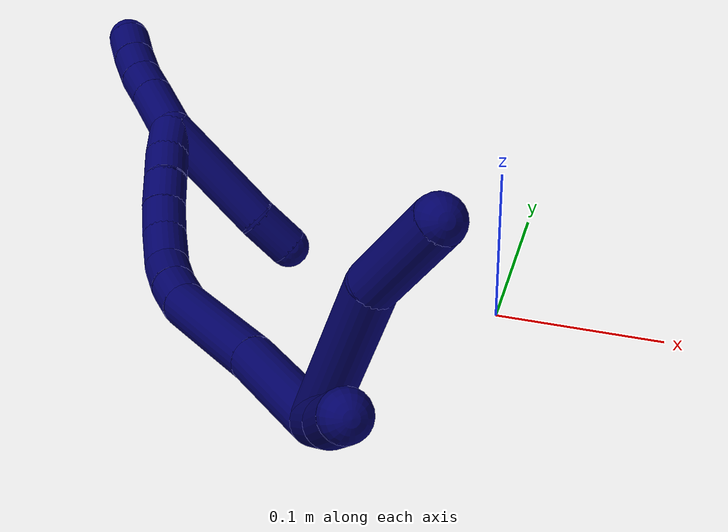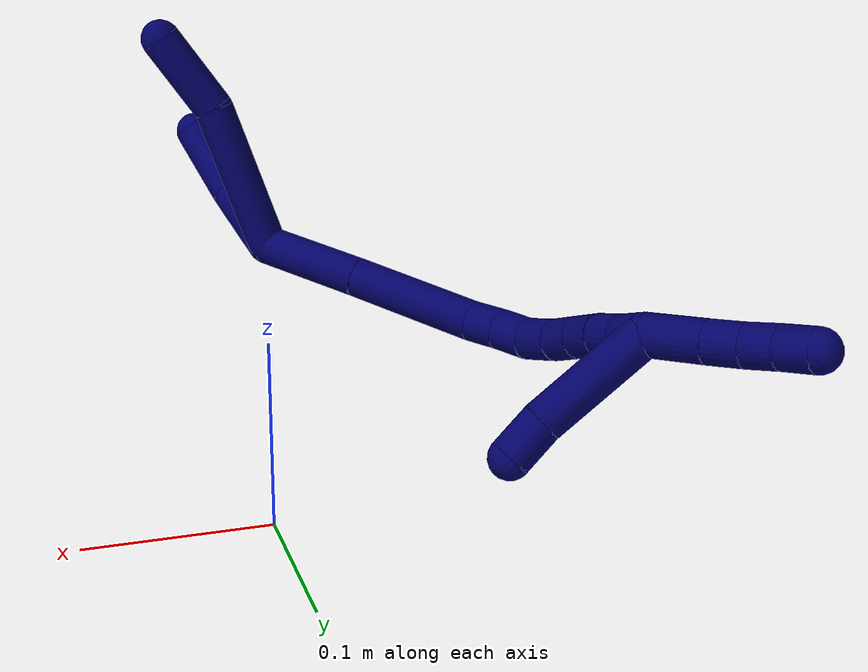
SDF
<sdf version="1.7">
 <world name="default">
  <model name="7">
   <static>0</static>
   <link name="7">
    <collision name="collision-cylinder-e_1_2_8">
     <pose>0.003746 0.033606 0.033964 -0.780106 0.078251 -0.032184</pose>
     <geometry><cylinder><radius>0.0125</radius><length>0.095853</length></cylinder></geometry>
     <surface>
      <friction><ode><mu>1.16</mu><mu2>1.16</mu2><slip1>0</slip1><slip2>0</slip2></ode></friction>
      <contact><ode><kp>1e+06</kp><kd>1</kd><max_vel>0</max_vel><min_depth>0.001</min_depth></ode></contact>
     </surface>
    </collision>
    <visual name="visual-cylinder-e_1_2_8">
     <pose>0.003746 0.033606 0.033964 -0.780106 0.078251 -0.032184</pose>
     <geometry><cylinder><radius>0.0125</radius><length>0.095853</length></cylinder></geometry>
     <material><ambient>0.003922 0 0.403922 1</ambient></material>
    </visual>
    <collision name="collision-cylinder-e_2_8_6">
     <pose>0.015708 0.081997 0.089068 -0.610295 0.308304 -0.09781</pose>
     <geometry><cylinder><radius>0.0125</radius><length>0.054147</length></cylinder></geometry>
     <surface>
      <friction><ode><mu>1.16</mu><mu2>1.16</mu2><slip1>0</slip1><slip2>0</slip2></ode></friction>
      <contact><ode><kp>1e+06</kp><kd>1</kd><max_vel>0</max_vel><min_depth>0.001</min_depth></ode></contact>
     </surface>
    </collision>
    <visual name="visual-cylinder-e_2_8_6">
     <pose>0.015708 0.081997 0.089068 -0.610295 0.308304 -0.09781</pose>
     <geometry><cylinder><radius>0.0125</radius><length>0.054147</length></cylinder></geometry>
     <material><ambient>0.003922 0 0.403922 1</ambient></material>
    </visual>
    <collision name="collision-cylinder-e_1_2_9">
     <pose>-0.001823 0.002598 0.023613 -0.109584 -0.076572 0.004202</pose>
     <geometry><cylinder><radius>0.0125</radius><length>0.047651</length></cylinder></geometry>
     <surface>
      <friction><ode><mu>1.16</mu><mu2>1.16</mu2><slip1>0</slip1><slip2>0</slip2></ode></friction>
      <contact><ode><kp>1e+06</kp><kd>1</kd><max_vel>0</max_vel><min_depth>0.001</min_depth></ode></contact>
     </surface>
    </collision>
    <visual name="visual-cylinder-e_1_2_9">
     <pose>-0.001823 0.002598 0.023613 -0.109584 -0.076572 0.004202</pose>
     <geometry><cylinder><radius>0.0125</radius><length>0.047651</length></cylinder></geometry>
     <material><ambient>0.003922 0 0.403922 1</ambient></material>
    </visual>
    <collision name="collision-cylinder-e_2_9_5">
     <pose>-0.006285 0.009814 0.072855 -0.178292 -0.101028 0.009038</pose>
     <geometry><cylinder><radius>0.0125</radius><length>0.052349</length></cylinder></geometry>
     <surface>
      <friction><ode><mu>1.16</mu><mu2>1.16</mu2><slip1>0</slip1><slip2>0</slip2></ode></friction>
      <contact><ode><kp>1e+06</kp><kd>1</kd><max_vel>0</max_vel><min_depth>0.001</min_depth></ode></contact>
     </surface>
    </collision>
    <visual name="visual-cylinder-e_2_9_5">
     <pose>-0.006285 0.009814 0.072855 -0.178292 -0.101028 0.009038</pose>
     <geometry><cylinder><radius>0.0125</radius><length>0.052349</length></cylinder></geometry>
     <material><ambient>0.003922 0 0.403922 1</ambient></material>
    </visual>
    <collision name="collision-cylinder-e_1_2_10">
     <pose>-0.00948 0.011113 -0.032375 -2.81093 -0.270196 1.36719</pose>
     <geometry><cylinder><radius>0.0125</radius><length>0.071035</length></cylinder></geometry>
     <surface>
      <friction><ode><mu>1.16</mu><mu2>1.16</mu2><slip1>0</slip1><slip2>0</slip2></ode></friction>
      <contact><ode><kp>1e+06</kp><kd>1</kd><max_vel>0</max_vel><min_depth>0.001</min_depth></ode></contact>
     </surface>
    </collision>
    <visual name="visual-cylinder-e_1_2_10">
     <pose>-0.00948 0.011113 -0.032375 -2.81093 -0.270196 1.36719</pose>
     <geometry><cylinder><radius>0.0125</radius><length>0.071035</length></cylinder></geometry>
     <material><ambient>0.003922 0 0.403922 1</ambient></material>
    </visual>
    <collision name="collision-cylinder-e_2_10_11">
     <pose>-0.031499 0.03309 -0.102548 -2.86173 -0.308622 1.6699</pose>
     <geometry><cylinder><radius>0.0125</radius><length>0.08256</length></cylinder></geometry>
     <surface>
      <friction><ode><mu>1.16</mu><mu2>1.16</mu2><slip1>0</slip1><slip2>0</slip2></ode></friction>
      <contact><ode><kp>1e+06</kp><kd>1</kd><max_vel>0</max_vel><min_depth>0.001</min_depth></ode></contact>
     </surface>
    </collision>
    <visual name="visual-cylinder-e_2_10_11">
     <pose>-0.031499 0.03309 -0.102548 -2.86173 -0.308622 1.6699</pose>
     <geometry><cylinder><radius>0.0125</radius><length>0.08256</length></cylinder></geometry>
     <material><ambient>0.003922 0 0.403922 1</ambient></material>
    </visual>
    <collision name="collision-cylinder-e_3_11_12">
     <pose>-0.046143 0.048452 -0.149467 -2.68335 -0.204183 0.827802</pose>
     <geometry><cylinder><radius>0.0125</radius><length>0.020767</length></cylinder></geometry>
     <surface>
      <friction><ode><mu>1.16</mu><mu2>1.16</mu2><slip1>0</slip1><slip2>0</slip2></ode></friction>
      <contact><ode><kp>1e+06</kp><kd>1</kd><max_vel>0</max_vel><min_depth>0.001</min_depth></ode></contact>
     </surface>
    </collision>
    <visual name="visual-cylinder-e_3_11_12">
     <pose>-0.046143 0.048452 -0.149467 -2.68335 -0.204183 0.827802</pose>
     <geometry><cylinder><radius>0.0125</radius><length>0.020767</length></cylinder></geometry>
     <material><ambient>0.003922 0 0.403922 1</ambient></material>
    </visual>
    <collision name="collision-cylinder-e_4_12_13">
     <pose>-0.049112 0.057964 -0.168072 -2.65536 -0.080297 0.32113</pose>
     <geometry><cylinder><radius>0.0125</radius><length>0.02153</length></cylinder></geometry>
     <surface>
      <friction><ode><mu>1.16</mu><mu2>1.16</mu2><slip1>0</slip1><slip2>0</slip2></ode></friction>
      <contact><ode><kp>1e+06</kp><kd>1</kd><max_vel>0</max_vel><min_depth>0.001</min_depth></ode></contact>
     </surface>
    </collision>
    <visual name="visual-cylinder-e_4_12_13">
     <pose>-0.049112 0.057964 -0.168072 -2.65536 -0.080297 0.32113</pose>
     <geometry><cylinder><radius>0.0125</radius><length>0.02153</length></cylinder></geometry>
     <material><ambient>0.003922 0 0.403922 1</ambient></material>
    </visual>
    <collision name="collision-cylinder-e_5_13_14">
     <pose>-0.050048 0.071347 -0.185946 -2.3573 -0.006111 0.014777</pose>
     <geometry><cylinder><radius>0.0125</radius><length>0.023698</length></cylinder></geometry>
     <surface>
      <friction><ode><mu>1.16</mu><mu2>1.16</mu2><slip1>0</slip1><slip2>0</slip2></ode></friction>
      <contact><ode><kp>1e+06</kp><kd>1</kd><max_vel>0</max_vel><min_depth>0.001</min_depth></ode></contact>
     </surface>
    </collision>
    <visual name="visual-cylinder-e_5_13_14">
     <pose>-0.050048 0.071347 -0.185946 -2.3573 -0.006111 0.014777</pose>
     <geometry><cylinder><radius>0.0125</radius><length>0.023698</length></cylinder></geometry>
     <material><ambient>0.003922 0 0.403922 1</ambient></material>
    </visual>
    <collision name="collision-cylinder-e_6_14_15">
     <pose>-0.049942 0.087628 -0.200501 -2.23291 0.017808 -0.036457</pose>
     <geometry><cylinder><radius>0.0125</radius><length>0.020065</length></cylinder></geometry>
     <surface>
      <friction><ode><mu>1.16</mu><mu2>1.16</mu2><slip1>0</slip1><slip2>0</slip2></ode></friction>
      <contact><ode><kp>1e+06</kp><kd>1</kd><max_vel>0</max_vel><min_depth>0.001</min_depth></ode></contact>
     </surface>
    </collision>
    <visual name="visual-cylinder-e_6_14_15">
     <pose>-0.049942 0.087628 -0.200501 -2.23291 0.017808 -0.036457</pose>
     <geometry><cylinder><radius>0.0125</radius><length>0.020065</length></cylinder></geometry>
     <material><ambient>0.003922 0 0.403922 1</ambient></material>
    </visual>
    <collision name="collision-cylinder-e_7_15_16">
     <pose>-0.048878 0.103551 -0.21275 -2.22009 0.087778 -0.17649</pose>
     <geometry><cylinder><radius>0.0125</radius><length>0.020196</length></cylinder></geometry>
     <surface>
      <friction><ode><mu>1.16</mu><mu2>1.16</mu2><slip1>0</slip1><slip2>0</slip2></ode></friction>
      <contact><ode><kp>1e+06</kp><kd>1</kd><max_vel>0</max_vel><min_depth>0.001</min_depth></ode></contact>
     </surface>
    </collision>
    <visual name="visual-cylinder-e_7_15_16">
     <pose>-0.048878 0.103551 -0.21275 -2.22009 0.087778 -0.17649</pose>
     <geometry><cylinder><radius>0.0125</radius><length>0.020196</length></cylinder></geometry>
     <material><ambient>0.003922 0 0.403922 1</ambient></material>
    </visual>
    <collision name="collision-cylinder-e_8_16_17">
     <pose>-0.047108 0.118894 -0.225584 -2.31515 0.088495 -0.201278</pose>
     <geometry><cylinder><radius>0.0125</radius><length>0.020012</length></cylinder></geometry>
     <surface>
      <friction><ode><mu>1.16</mu><mu2>1.16</mu2><slip1>0</slip1><slip2>0</slip2></ode></friction>
      <contact><ode><kp>1e+06</kp><kd>1</kd><max_vel>0</max_vel><min_depth>0.001</min_depth></ode></contact>
     </surface>
    </collision>
    <visual name="visual-cylinder-e_8_16_17">
     <pose>-0.047108 0.118894 -0.225584 -2.31515 0.088495 -0.201278</pose>
     <geometry><cylinder><radius>0.0125</radius><length>0.020012</length></cylinder></geometry>
     <material><ambient>0.003922 0 0.403922 1</ambient></material>
    </visual>
    <collision name="collision-cylinder-e_9_17_1">
     <pose>-0.04449 0.134158 -0.23829 -2.21459 0.173056 -0.343684</pose>
     <geometry><cylinder><radius>0.0125</radius><length>0.020138</length></cylinder></geometry>
     <surface>
      <friction><ode><mu>1.16</mu><mu2>1.16</mu2><slip1>0</slip1><slip2>0</slip2></ode></friction>
      <contact><ode><kp>1e+06</kp><kd>1</kd><max_vel>0</max_vel><min_depth>0.001</min_depth></ode></contact>
     </surface>
    </collision>
    <visual name="visual-cylinder-e_9_17_1">
     <pose>-0.04449 0.134158 -0.23829 -2.21459 0.173056 -0.343684</pose>
     <geometry><cylinder><radius>0.0125</radius><length>0.020138</length></cylinder></geometry>
     <material><ambient>0.003922 0 0.403922 1</ambient></material>
    </visual>
    <collision name="collision-cylinder-e_1_1_18">
     <pose>-0.046976 0.152392 -0.258999 -2.53211 -0.230285 0.704701</pose>
     <geometry><cylinder><radius>0.0125</radius><length>0.036967</length></cylinder></geometry>
     <surface>
      <friction><ode><mu>1.16</mu><mu2>1.16</mu2><slip1>0</slip1><slip2>0</slip2></ode></friction>
      <contact><ode><kp>1e+06</kp><kd>1</kd><max_vel>0</max_vel><min_depth>0.001</min_depth></ode></contact>
     </surface>
    </collision>
    <visual name="visual-cylinder-e_1_1_18">
     <pose>-0.046976 0.152392 -0.258999 -2.53211 -0.230285 0.704701</pose>
     <geometry><cylinder><radius>0.0125</radius><length>0.036967</length></cylinder></geometry>
     <material><ambient>0.003922 0 0.403922 1</ambient></material>
    </visual>
    <collision name="collision-cylinder-e_2_18_19">
     <pose>-0.053915 0.168723 -0.282275 -2.52579 -0.254938 0.7662</pose>
     <geometry><cylinder><radius>0.0125</radius><length>0.021574</length></cylinder></geometry>
     <surface>
      <friction><ode><mu>1.16</mu><mu2>1.16</mu2><slip1>0</slip1><slip2>0</slip2></ode></friction>
      <contact><ode><kp>1e+06</kp><kd>1</kd><max_vel>0</max_vel><min_depth>0.001</min_depth></ode></contact>
     </surface>
    </collision>
    <visual name="visual-cylinder-e_2_18_19">
     <pose>-0.053915 0.168723 -0.282275 -2.52579 -0.254938 0.7662</pose>
     <geometry><cylinder><radius>0.0125</radius><length>0.021574</length></cylinder></geometry>
     <material><ambient>0.003922 0 0.403922 1</ambient></material>
    </visual>
    <collision name="collision-cylinder-e_3_19_20">
     <pose>-0.058412 0.181198 -0.298486 -2.44399 -0.175312 0.47421</pose>
     <geometry><cylinder><radius>0.0125</radius><length>0.02038</length></cylinder></geometry>
     <surface>
      <friction><ode><mu>1.16</mu><mu2>1.16</mu2><slip1>0</slip1><slip2>0</slip2></ode></friction>
      <contact><ode><kp>1e+06</kp><kd>1</kd><max_vel>0</max_vel><min_depth>0.001</min_depth></ode></contact>
     </surface>
    </collision>
    <visual name="visual-cylinder-e_3_19_20">
     <pose>-0.058412 0.181198 -0.298486 -2.44399 -0.175312 0.47421</pose>
     <geometry><cylinder><radius>0.0125</radius><length>0.02038</length></cylinder></geometry>
     <material><ambient>0.003922 0 0.403922 1</ambient></material>
    </visual>
    <collision name="collision-cylinder-e_4_20_4">
     <pose>-0.061246 0.194388 -0.314206 -2.44302 -0.100381 0.274111</pose>
     <geometry><cylinder><radius>0.0125</radius><length>0.021079</length></cylinder></geometry>
     <surface>
      <friction><ode><mu>1.16</mu><mu2>1.16</mu2><slip1>0</slip1><slip2>0</slip2></ode></friction>
      <contact><ode><kp>1e+06</kp><kd>1</kd><max_vel>0</max_vel><min_depth>0.001</min_depth></ode></contact>
     </surface>
    </collision>
    <visual name="visual-cylinder-e_4_20_4">
     <pose>-0.061246 0.194388 -0.314206 -2.44302 -0.100381 0.274111</pose>
     <geometry><cylinder><radius>0.0125</radius><length>0.021079</length></cylinder></geometry>
     <material><ambient>0.003922 0 0.403922 1</ambient></material>
    </visual>
    <collision name="collision-cylinder-e_1_1_21">
     <pose>-0.016171 0.116925 -0.241229 1.45159 0.809268 0.726354</pose>
     <geometry><cylinder><radius>0.0125</radius><length>0.073463</length></cylinder></geometry>
     <surface>
      <friction><ode><mu>1.16</mu><mu2>1.16</mu2><slip1>0</slip1><slip2>0</slip2></ode></friction>
      <contact><ode><kp>1e+06</kp><kd>1</kd><max_vel>0</max_vel><min_depth>0.001</min_depth></ode></contact>
     </surface>
    </collision>
    <visual name="visual-cylinder-e_1_1_21">
     <pose>-0.016171 0.116925 -0.241229 1.45159 0.809268 0.726354</pose>
     <geometry><cylinder><radius>0.0125</radius><length>0.073463</length></cylinder></geometry>
     <material><ambient>0.003922 0 0.403922 1</ambient></material>
    </visual>
    <collision name="collision-cylinder-e_2_21_3">
     <pose>0.020721 0.083468 -0.23926 1.69617 0.889487 0.990924</pose>
     <geometry><cylinder><radius>0.0125</radius><length>0.026537</length></cylinder></geometry>
     <surface>
      <friction><ode><mu>1.16</mu><mu2>1.16</mu2><slip1>0</slip1><slip2>0</slip2></ode></friction>
      <contact><ode><kp>1e+06</kp><kd>1</kd><max_vel>0</max_vel><min_depth>0.001</min_depth></ode></contact>
     </surface>
    </collision>
    <visual name="visual-cylinder-e_2_21_3">
     <pose>0.020721 0.083468 -0.23926 1.69617 0.889487 0.990924</pose>
     <geometry><cylinder><radius>0.0125</radius><length>0.026537</length></cylinder></geometry>
     <material><ambient>0.003922 0 0.403922 1</ambient></material>
    </visual>
    <collision name="collision-sphere-3">
     <pose>0.031027 0.075177 -0.240305 0 -0 0</pose>
     <geometry><sphere><radius>0.0125</radius></sphere></geometry>
     <surface>
      <friction><ode><mu>1.16</mu><mu2>1.16</mu2><slip1>0</slip1><slip2>0</slip2></ode></friction>
      <contact><ode><kp>1e+06</kp><kd>1</kd><max_vel>0</max_vel><min_depth>0.001</min_depth></ode></contact>
     </surface>
    </collision>
    <visual name="visual-sphere-3">
     <pose>0.031027 0.075177 -0.240305 0 -0 0</pose>
     <geometry><sphere><radius>0.0125</radius></sphere></geometry>
     <material><ambient>0.003922 0 0.403922 1</ambient></material>
    </visual>
    <collision name="collision-sphere-21">
     <pose>0.010415 0.091759 -0.238215 0 -0 0</pose>
     <geometry><sphere><radius>0.0125</radius></sphere></geometry>
     <surface>
      <friction><ode><mu>1.16</mu><mu2>1.16</mu2><slip1>0</slip1><slip2>0</slip2></ode></friction>
      <contact><ode><kp>1e+06</kp><kd>1</kd><max_vel>0</max_vel><min_depth>0.001</min_depth></ode></contact>
     </surface>
    </collision>
    <visual name="visual-sphere-21">
     <pose>0.010415 0.091759 -0.238215 0 -0 0</pose>
     <geometry><sphere><radius>0.0125</radius></sphere></geometry>
     <material><ambient>0.003922 0 0.403922 1</ambient></material>
    </visual>
    <collision name="collision-sphere-4">
     <pose>-0.062302 0.201132 -0.322236 0 -0 0</pose>
     <geometry><sphere><radius>0.0125</radius></sphere></geometry>
     <surface>
      <friction><ode><mu>1.16</mu><mu2>1.16</mu2><slip1>0</slip1><slip2>0</slip2></ode></friction>
      <contact><ode><kp>1e+06</kp><kd>1</kd><max_vel>0</max_vel><min_depth>0.001</min_depth></ode></contact>
     </surface>
    </collision>
    <visual name="visual-sphere-4">
     <pose>-0.062302 0.201132 -0.322236 0 -0 0</pose>
     <geometry><sphere><radius>0.0125</radius></sphere></geometry>
     <material><ambient>0.003922 0 0.403922 1</ambient></material>
    </visual>
    <collision name="collision-sphere-20">
     <pose>-0.06019 0.187644 -0.306176 0 -0 0</pose>
     <geometry><sphere><radius>0.0125</radius></sphere></geometry>
     <surface>
      <friction><ode><mu>1.16</mu><mu2>1.16</mu2><slip1>0</slip1><slip2>0</slip2></ode></friction>
      <contact><ode><kp>1e+06</kp><kd>1</kd><max_vel>0</max_vel><min_depth>0.001</min_depth></ode></contact>
     </surface>
    </collision>
    <visual name="visual-sphere-20">
     <pose>-0.06019 0.187644 -0.306176 0 -0 0</pose>
     <geometry><sphere><radius>0.0125</radius></sphere></geometry>
     <material><ambient>0.003922 0 0.403922 1</ambient></material>
    </visual>
    <collision name="collision-sphere-10">
     <pose>-0.018961 0.022226 -0.064749 0 -0 0</pose>
     <geometry><sphere><radius>0.0125</radius></sphere></geometry>
     <surface>
      <friction><ode><mu>1.16</mu><mu2>1.16</mu2><slip1>0</slip1><slip2>0</slip2></ode></friction>
      <contact><ode><kp>1e+06</kp><kd>1</kd><max_vel>0</max_vel><min_depth>0.001</min_depth></ode></contact>
     </surface>
    </collision>
    <visual name="visual-sphere-10">
     <pose>-0.018961 0.022226 -0.064749 0 -0 0</pose>
     <geometry><sphere><radius>0.0125</radius></sphere></geometry>
     <material><ambient>0.003922 0 0.403922 1</ambient></material>
    </visual>
    <collision name="collision-sphere-5">
     <pose>-0.008925 0.014433 0.098483 0 -0 0</pose>
     <geometry><sphere><radius>0.0125</radius></sphere></geometry>
     <surface>
      <friction><ode><mu>1.16</mu><mu2>1.16</mu2><slip1>0</slip1><slip2>0</slip2></ode></friction>
      <contact><ode><kp>1e+06</kp><kd>1</kd><max_vel>0</max_vel><min_depth>0.001</min_depth></ode></contact>
     </surface>
    </collision>
    <visual name="visual-sphere-5">
     <pose>-0.008925 0.014433 0.098483 0 -0 0</pose>
     <geometry><sphere><radius>0.0125</radius></sphere></geometry>
     <material><ambient>0.003922 0 0.403922 1</ambient></material>
    </visual>
    <collision name="collision-sphere-6">
     <pose>0.023923 0.096781 0.110208 0 -0 0</pose>
     <geometry><sphere><radius>0.0125</radius></sphere></geometry>
     <surface>
      <friction><ode><mu>1.16</mu><mu2>1.16</mu2><slip1>0</slip1><slip2>0</slip2></ode></friction>
      <contact><ode><kp>1e+06</kp><kd>1</kd><max_vel>0</max_vel><min_depth>0.001</min_depth></ode></contact>
     </surface>
    </collision>
    <visual name="visual-sphere-6">
     <pose>0.023923 0.096781 0.110208 0 -0 0</pose>
     <geometry><sphere><radius>0.0125</radius></sphere></geometry>
     <material><ambient>0.003922 0 0.403922 1</ambient></material>
    </visual>
    <collision name="collision-sphere-9">
     <pose>-0.003645 0.005196 0.047227 0 -0 0</pose>
     <geometry><sphere><radius>0.0125</radius></sphere></geometry>
     <surface>
      <friction><ode><mu>1.16</mu><mu2>1.16</mu2><slip1>0</slip1><slip2>0</slip2></ode></friction>
      <contact><ode><kp>1e+06</kp><kd>1</kd><max_vel>0</max_vel><min_depth>0.001</min_depth></ode></contact>
     </surface>
    </collision>
    <visual name="visual-sphere-9">
     <pose>-0.003645 0.005196 0.047227 0 -0 0</pose>
     <geometry><sphere><radius>0.0125</radius></sphere></geometry>
     <material><ambient>0.003922 0 0.403922 1</ambient></material>
    </visual>
    <collision name="collision-sphere-2">
     <geometry><sphere><radius>0.0125</radius></sphere></geometry>
     <surface>
      <friction><ode><mu>1.16</mu><mu2>1.16</mu2><slip1>0</slip1><slip2>0</slip2></ode></friction>
      <contact><ode><kp>1e+06</kp><kd>1</kd><max_vel>0</max_vel><min_depth>0.001</min_depth></ode></contact>
     </surface>
    </collision>
    <visual name="visual-sphere-2">
     <geometry><sphere><radius>0.0125</radius></sphere></geometry>
     <material><ambient>0.003922 0 0.403922 1</ambient></material>
    </visual>
    <collision name="collision-sphere-19">
     <pose>-0.056635 0.174752 -0.290796 0 -0 0</pose>
     <geometry><sphere><radius>0.0125</radius></sphere></geometry>
     <surface>
      <friction><ode><mu>1.16</mu><mu2>1.16</mu2><slip1>0</slip1><slip2>0</slip2></ode></friction>
      <contact><ode><kp>1e+06</kp><kd>1</kd><max_vel>0</max_vel><min_depth>0.001</min_depth></ode></contact>
     </surface>
    </collision>
    <visual name="visual-sphere-19">
     <pose>-0.056635 0.174752 -0.290796 0 -0 0</pose>
     <geometry><sphere><radius>0.0125</radius></sphere></geometry>
     <material><ambient>0.003922 0 0.403922 1</ambient></material>
    </visual>
    <collision name="collision-sphere-8">
     <pose>0.007493 0.067213 0.067928 0 -0 0</pose>
     <geometry><sphere><radius>0.0125</radius></sphere></geometry>
     <surface>
      <friction><ode><mu>1.16</mu><mu2>1.16</mu2><slip1>0</slip1><slip2>0</slip2></ode></friction>
      <contact><ode><kp>1e+06</kp><kd>1</kd><max_vel>0</max_vel><min_depth>0.001</min_depth></ode></contact>
     </surface>
    </collision>
    <visual name="visual-sphere-8">
     <pose>0.007493 0.067213 0.067928 0 -0 0</pose>
     <geometry><sphere><radius>0.0125</radius></sphere></geometry>
     <material><ambient>0.003922 0 0.403922 1</ambient></material>
    </visual>
    <collision name="collision-sphere-11">
     <pose>-0.044038 0.043954 -0.140348 0 -0 0</pose>
     <geometry><sphere><radius>0.0125</radius></sphere></geometry>
     <surface>
      <friction><ode><mu>1.16</mu><mu2>1.16</mu2><slip1>0</slip1><slip2>0</slip2></ode></friction>
      <contact><ode><kp>1e+06</kp><kd>1</kd><max_vel>0</max_vel><min_depth>0.001</min_depth></ode></contact>
     </surface>
    </collision>
    <visual name="visual-sphere-11">
     <pose>-0.044038 0.043954 -0.140348 0 -0 0</pose>
     <geometry><sphere><radius>0.0125</radius></sphere></geometry>
     <material><ambient>0.003922 0 0.403922 1</ambient></material>
    </visual>
    <collision name="collision-sphere-12">
     <pose>-0.048249 0.05295 -0.158586 0 -0 0</pose>
     <geometry><sphere><radius>0.0125</radius></sphere></geometry>
     <surface>
      <friction><ode><mu>1.16</mu><mu2>1.16</mu2><slip1>0</slip1><slip2>0</slip2></ode></friction>
      <contact><ode><kp>1e+06</kp><kd>1</kd><max_vel>0</max_vel><min_depth>0.001</min_depth></ode></contact>
     </surface>
    </collision>
    <visual name="visual-sphere-12">
     <pose>-0.048249 0.05295 -0.158586 0 -0 0</pose>
     <geometry><sphere><radius>0.0125</radius></sphere></geometry>
     <material><ambient>0.003922 0 0.403922 1</ambient></material>
    </visual>
    <collision name="collision-sphere-13">
     <pose>-0.049976 0.062978 -0.177559 0 -0 0</pose>
     <geometry><sphere><radius>0.0125</radius></sphere></geometry>
     <surface>
      <friction><ode><mu>1.16</mu><mu2>1.16</mu2><slip1>0</slip1><slip2>0</slip2></ode></friction>
      <contact><ode><kp>1e+06</kp><kd>1</kd><max_vel>0</max_vel><min_depth>0.001</min_depth></ode></contact>
     </surface>
    </collision>
    <visual name="visual-sphere-13">
     <pose>-0.049976 0.062978 -0.177559 0 -0 0</pose>
     <geometry><sphere><radius>0.0125</radius></sphere></geometry>
     <material><ambient>0.003922 0 0.403922 1</ambient></material>
    </visual>
    <collision name="collision-sphere-14">
     <pose>-0.050121 0.079716 -0.194334 0 -0 0</pose>
     <geometry><sphere><radius>0.0125</radius></sphere></geometry>
     <surface>
      <friction><ode><mu>1.16</mu><mu2>1.16</mu2><slip1>0</slip1><slip2>0</slip2></ode></friction>
      <contact><ode><kp>1e+06</kp><kd>1</kd><max_vel>0</max_vel><min_depth>0.001</min_depth></ode></contact>
     </surface>
    </collision>
    <visual name="visual-sphere-14">
     <pose>-0.050121 0.079716 -0.194334 0 -0 0</pose>
     <geometry><sphere><radius>0.0125</radius></sphere></geometry>
     <material><ambient>0.003922 0 0.403922 1</ambient></material>
    </visual>
    <collision name="collision-sphere-15">
     <pose>-0.049763 0.095539 -0.206668 0 -0 0</pose>
     <geometry><sphere><radius>0.0125</radius></sphere></geometry>
     <surface>
      <friction><ode><mu>1.16</mu><mu2>1.16</mu2><slip1>0</slip1><slip2>0</slip2></ode></friction>
      <contact><ode><kp>1e+06</kp><kd>1</kd><max_vel>0</max_vel><min_depth>0.001</min_depth></ode></contact>
     </surface>
    </collision>
    <visual name="visual-sphere-15">
     <pose>-0.049763 0.095539 -0.206668 0 -0 0</pose>
     <geometry><sphere><radius>0.0125</radius></sphere></geometry>
     <material><ambient>0.003922 0 0.403922 1</ambient></material>
    </visual>
    <collision name="collision-sphere-16">
     <pose>-0.047993 0.111563 -0.218832 0 -0 0</pose>
     <geometry><sphere><radius>0.0125</radius></sphere></geometry>
     <surface>
      <friction><ode><mu>1.16</mu><mu2>1.16</mu2><slip1>0</slip1><slip2>0</slip2></ode></friction>
      <contact><ode><kp>1e+06</kp><kd>1</kd><max_vel>0</max_vel><min_depth>0.001</min_depth></ode></contact>
     </surface>
    </collision>
    <visual name="visual-sphere-16">
     <pose>-0.047993 0.111563 -0.218832 0 -0 0</pose>
     <geometry><sphere><radius>0.0125</radius></sphere></geometry>
     <material><ambient>0.003922 0 0.403922 1</ambient></material>
    </visual>
    <collision name="collision-sphere-17">
     <pose>-0.046224 0.126225 -0.232337 0 -0 0</pose>
     <geometry><sphere><radius>0.0125</radius></sphere></geometry>
     <surface>
      <friction><ode><mu>1.16</mu><mu2>1.16</mu2><slip1>0</slip1><slip2>0</slip2></ode></friction>
      <contact><ode><kp>1e+06</kp><kd>1</kd><max_vel>0</max_vel><min_depth>0.001</min_depth></ode></contact>
     </surface>
    </collision>
    <visual name="visual-sphere-17">
     <pose>-0.046224 0.126225 -0.232337 0 -0 0</pose>
     <geometry><sphere><radius>0.0125</radius></sphere></geometry>
     <material><ambient>0.003922 0 0.403922 1</ambient></material>
    </visual>
    <collision name="collision-sphere-1">
     <pose>-0.042757 0.142091 -0.244243 0 -0 0</pose>
     <geometry><sphere><radius>0.0125</radius></sphere></geometry>
     <surface>
      <friction><ode><mu>1.16</mu><mu2>1.16</mu2><slip1>0</slip1><slip2>0</slip2></ode></friction>
      <contact><ode><kp>1e+06</kp><kd>1</kd><max_vel>0</max_vel><min_depth>0.001</min_depth></ode></contact>
     </surface>
    </collision>
    <visual name="visual-sphere-1">
     <pose>-0.042757 0.142091 -0.244243 0 -0 0</pose>
     <geometry><sphere><radius>0.0125</radius></sphere></geometry>
     <material><ambient>0.003922 0 0.403922 1</ambient></material>
    </visual>
    <collision name="collision-sphere-18">
     <pose>-0.051195 0.162694 -0.273754 0 -0 0</pose>
     <geometry><sphere><radius>0.0125</radius></sphere></geometry>
     <surface>
      <friction><ode><mu>1.16</mu><mu2>1.16</mu2><slip1>0</slip1><slip2>0</slip2></ode></friction>
      <contact><ode><kp>1e+06</kp><kd>1</kd><max_vel>0</max_vel><min_depth>0.001</min_depth></ode></contact>
     </surface>
    </collision>
    <visual name="visual-sphere-18">
     <pose>-0.051195 0.162694 -0.273754 0 -0 0</pose>
     <geometry><sphere><radius>0.0125</radius></sphere></geometry>
     <material><ambient>0.003922 0 0.403922 1</ambient></material>
    </visual>
    <inertial>
     <pose>-0.020705 0.070085 -0.105269 0 -0 0</pose>
     <mass>0.75</mass>
     <inertia>
      <ixx>0.000257</ixx>
      <ixy>0</ixy>
      <ixz>0</ixz>
      <iyy>0.000224</iyy>
      <iyz>0</iyz>
      <izz>-9.6e-05</izz>
     </inertia>
    </inertial>
   </link>
   <pose>-0.043393 -0.222169 0.095434 0.994842 0.179435 0.440245</pose>
  </model>
 </world>
</sdf>
